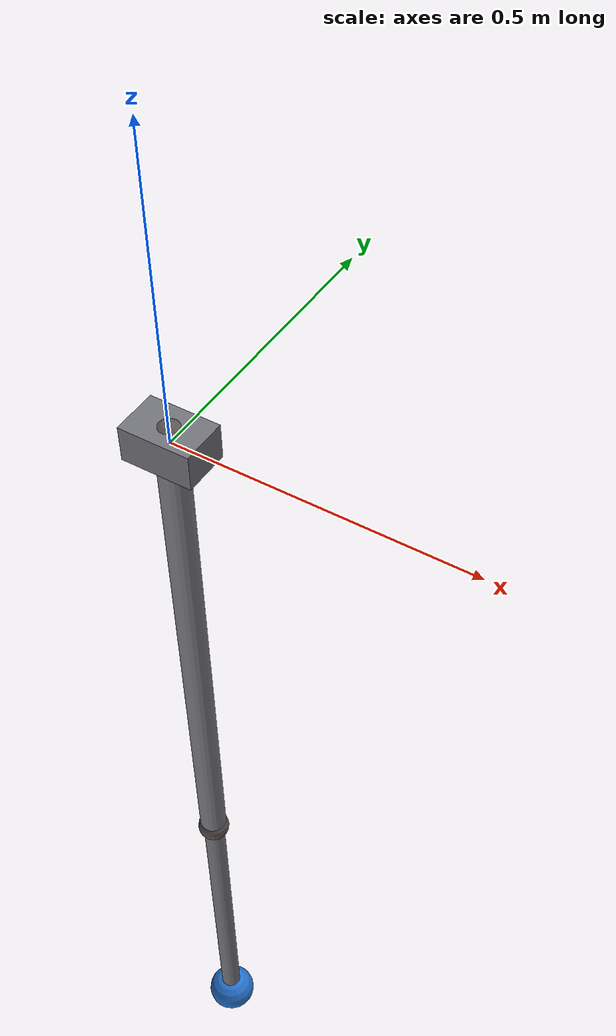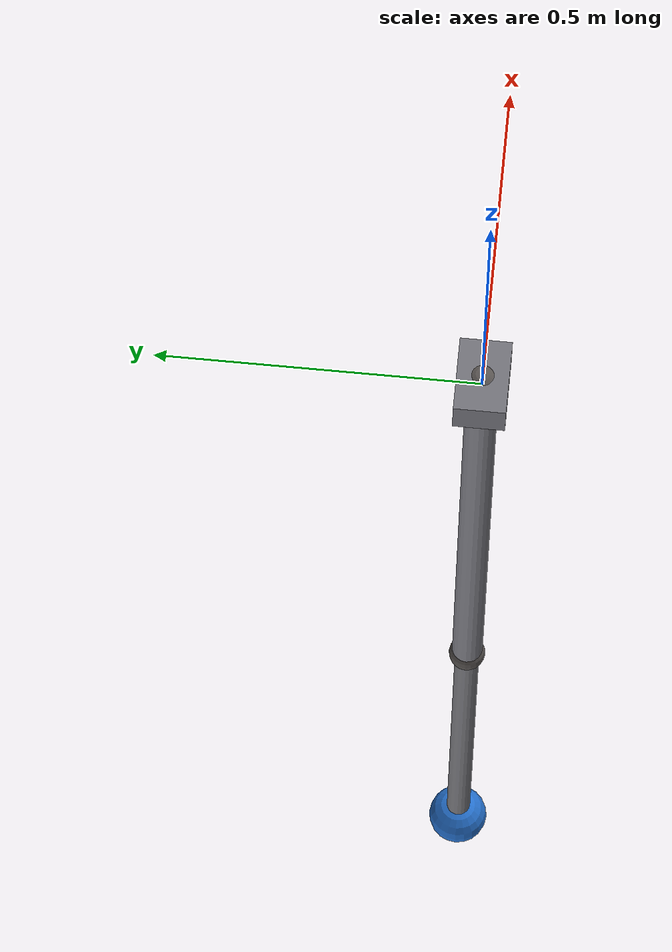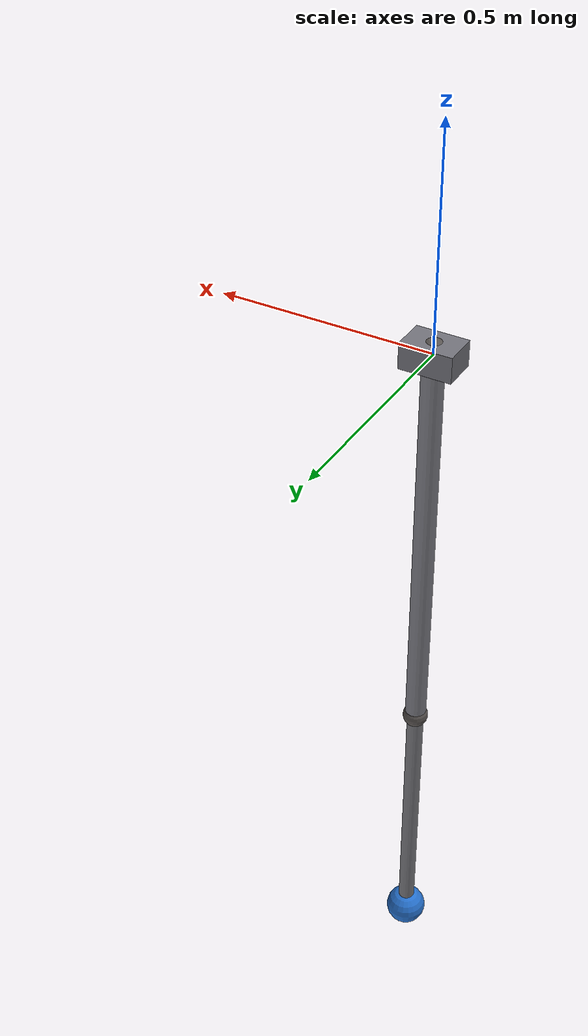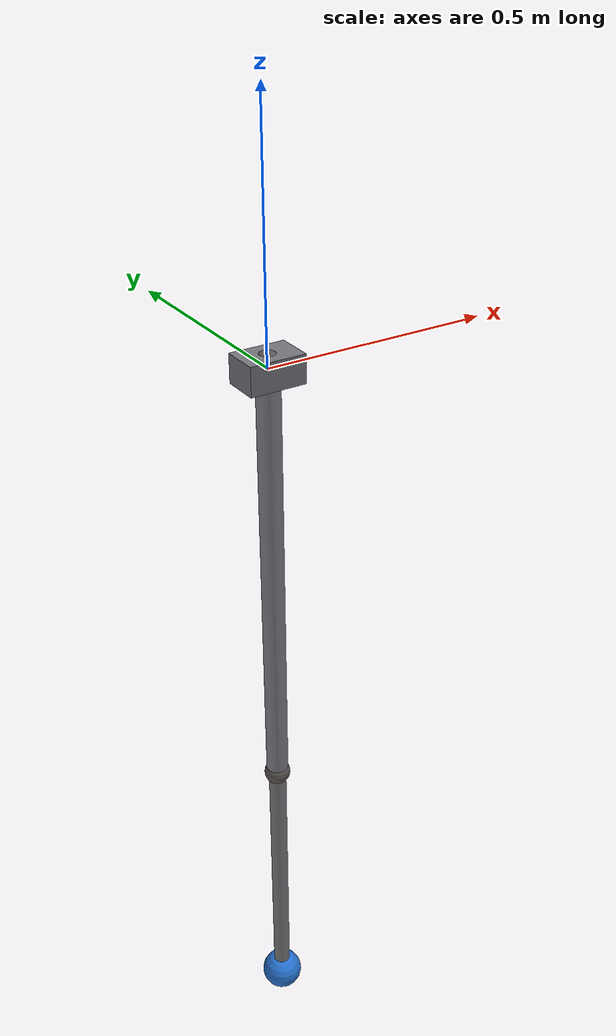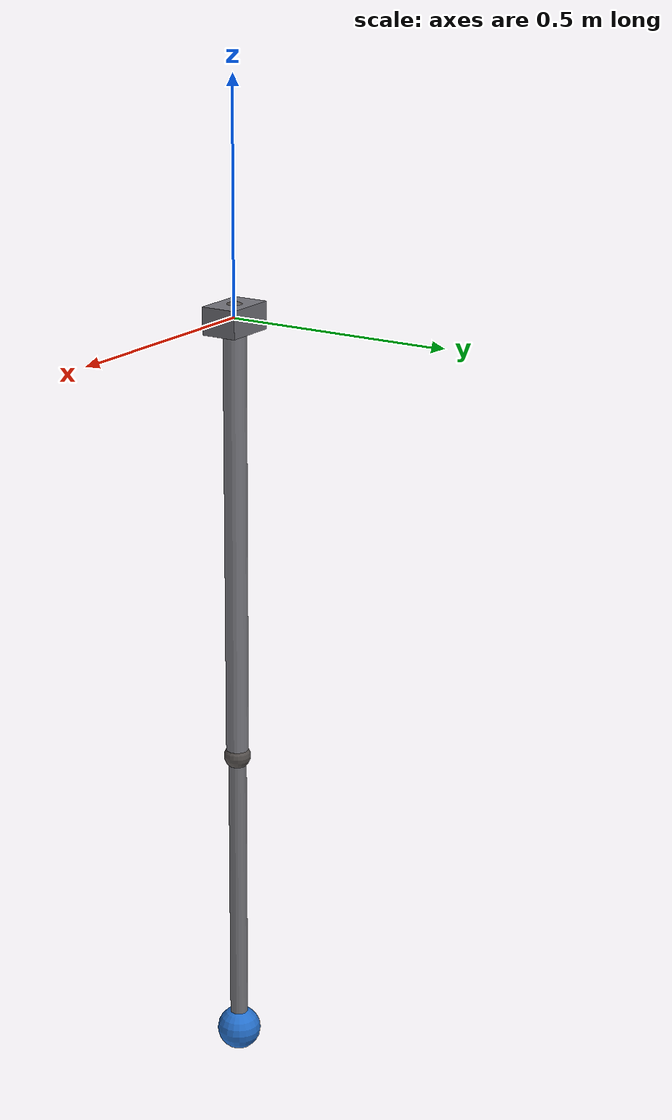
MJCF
<mujoco model="double_pendulum">
    <compiler angle="radian"/>
    <option gravity="0 0 -9.81" timestep="0.001" integrator="RK4">
        <flag energy="enable"/>
    </option>

    <default>
        <geom contype="0" conaffinity="0"/>
    </default>

    <worldbody>
        <!-- Pivot bracket (visual) -->
        <geom name="bracket" type="box" size="0.06 0.04 0.03"
              pos="0 0 0" rgba="0.45 0.45 0.48 1"/>

        <!-- Link 1 -->
        <body name="link1" pos="0 0 0">
            <joint name="hinge1" type="hinge" axis="0 1 0" damping="0"/>
            <inertial pos="0 0 -0.5" mass="1.0" diaginertia="0.01 0.01 0.01"/>
            <geom name="socket1" type="sphere" size="0.035"
                  pos="0 0 0" rgba="0.35 0.33 0.32 1"/>
            <geom name="rod1" type="capsule" size="0.025"
                  fromto="0 0 0  0 0 -1.0" rgba="0.50 0.50 0.53 1"/>
            <geom name="joint_ball" type="sphere" size="0.03"
                  pos="0 0 -1.0" rgba="0.35 0.33 0.32 1"/>

            <!-- Link 2 -->
            <body name="link2" pos="0 0 -1.0">
                <joint name="hinge2" type="hinge" axis="0 1 0" damping="0"/>
                <inertial pos="0 0 -0.35" mass="0.5" diaginertia="0.005 0.005 0.005"/>
                <geom name="rod2" type="capsule" size="0.02"
                      fromto="0 0 0  0 0 -0.7" rgba="0.48 0.48 0.50 1"/>
                <geom name="mass2" type="sphere" size="0.05"
                      pos="0 0 -0.7" rgba="0.15 0.45 0.82 1"/>
            </body>
        </body>
    </worldbody>
</mujoco>
